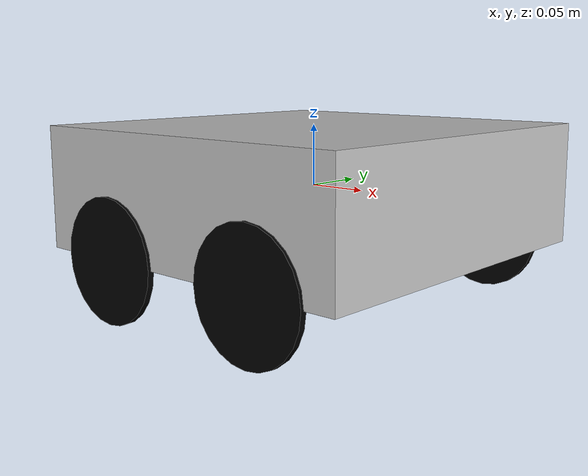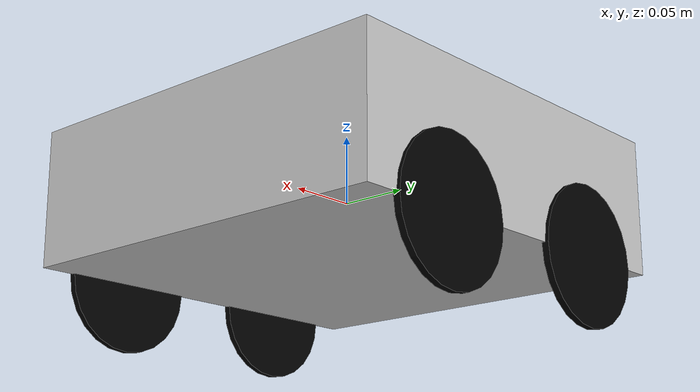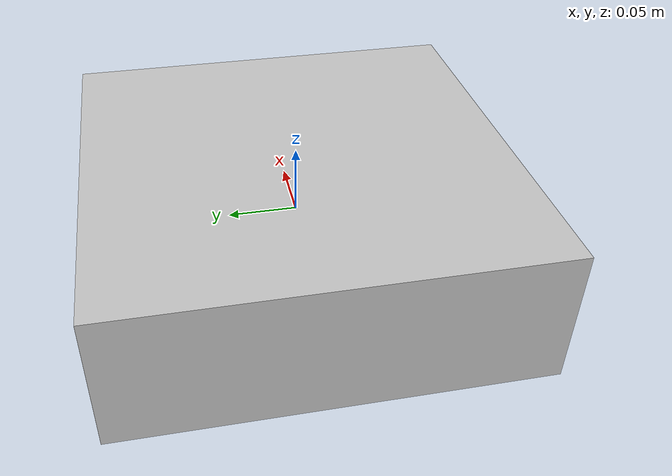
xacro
<robot name="ros_control_car" xmlns:xacro="http://ros.org/wiki/xacro">
    <xacro:include filename="$(find car)/urdf/car.urdf.xacro" />

    <transmission name="back_left">
        <type>transmission_interface/SimpleTransmission</type>
        <joint name="back_left_wheel_joint">
            <hardwareInterface>hardware_interface/VelocityJointInterface</hardwareInterface>
            </joint>
        <actuator name="back_left_motor">
            <mechanicalReduction>100</mechanicalReduction>
        </actuator>
    </transmission>
    <transmission name="back_right">
        <type>transmission_interface/SimpleTransmission</type>
        <joint name="back_right_wheel_joint">
            <hardwareInterface>hardware_interface/VelocityJointInterface</hardwareInterface>
            </joint>
        <actuator name="back_right_motor">
            <mechanicalReduction>100</mechanicalReduction>
        </actuator>
    </transmission>
    <transmission name="front_left">
        <type>transmission_interface/SimpleTransmission</type>
        <joint name="front_left_wheel_joint">
            <hardwareInterface>hardware_interface/VelocityJointInterface</hardwareInterface>
            </joint>
        <actuator name="front_left_motor">
            <mechanicalReduction>100</mechanicalReduction>
        </actuator>
    </transmission>
    <transmission name="front_right">
        <type>transmission_interface/SimpleTransmission</type>
        <joint name="front_right_wheel_joint">
            <hardwareInterface>hardware_interface/VelocityJointInterface</hardwareInterface>
            </joint>
        <actuator name="front_right_motor">
            <mechanicalReduction>100</mechanicalReduction>
        </actuator>
    </transmission>

    <gazebo>
        <plugin name="gazebo_ros_control" filename="libgazebo_ros_control.so">
        <robotNamespace>/</robotNamespace>
        </plugin>
    </gazebo>

</robot>

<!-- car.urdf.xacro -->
<robot name="car" xmlns:xacro="http://ros.org/wiki/xacro">

    <link name="base_link">

        <inertial>
            <mass value="1.0"/>
            <inertia ixx="0.0009375" iyy="0.0009375" izz="0.015" ixy="0" ixz="0" iyz="0"/>
        </inertial>

        <collision>

            <geometry>
                <box size="0.3 0.3 0.1"/>
            </geometry>

        </collision>

        <visual>
            <geometry>
                <box size="0.3 0.3 0.1"/>
            </geometry>

            <material name="silver">
                <color rgba="0.75 0.75 0.75 1"/>
            </material>
        </visual>

    </link>

    <link name="front_right_wheel">

        <inertial>
            <mass value="0.1"/>
            <inertia ixx="6.2708e-5" iyy="6.2708e-5" izz="0.000125" ixy="0" ixz="0" iyz="0"/>
        </inertial>
        <collision>
            <geometry>
                <cylinder length="0.005" radius="0.05"/>
            </geometry>
        </collision>

        <visual>
            <geometry>
                <cylinder length="0.005" radius="0.05"/>
            </geometry>
            <material name="black">
                <color rgba="0 0 0 1"/>
            </material>
        </visual>
    </link>

    <joint name="front_right_wheel_joint" type="continuous">
        <axis xyz="0 0 1"/>
        <parent link="base_link"/>
        <child link="front_right_wheel"/>
        <origin rpy="-1.5708 0 0" xyz="0.075 -0.15 -.05"/>
    </joint>

    <link name="front_left_wheel">
         <inertial>
            <mass value="0.1"/>
            <inertia ixx="6.2708e-5" iyy="6.2708e-5" izz="0.000125" ixy="0" ixz="0" iyz="0"/>
        </inertial>
        <collision>
            <geometry>
                <cylinder length="0.005" radius="0.05"/>
            </geometry>
        </collision>

        <visual>
            <geometry>
                <cylinder length="0.005" radius="0.05"/>
            </geometry>
            <material name="black"/>
        </visual>
    </link>

    <joint name="front_left_wheel_joint" type="continuous">
        <axis xyz="0 0 1"/>
        <parent link="base_link"/>
        <child link="front_left_wheel"/>
        <origin rpy="-1.5708 0 0" xyz="0.075 0.15 -.05"/>
    </joint>

    <link name="back_right_wheel">
         <inertial>
            <mass value="0.1"/>
            <inertia ixx="6.2708e-5" iyy="6.2708e-5" izz="0.000125" ixy="0" ixz="0" iyz="0"/>
        </inertial>
        <collision>
            <geometry>
                <cylinder length="0.005" radius="0.05"/>
            </geometry>
        </collision>

        <visual>
            <geometry>
                <cylinder length="0.005" radius="0.05"/>
            </geometry>
            <material name="black">
                <color rgba="0 0 0 1"/>
            </material>
        </visual>
    </link>

    <joint name="back_right_wheel_joint" type="continuous">
        <axis xyz="0 0 1"/>
        <parent link="base_link"/>
        <child link="back_right_wheel"/>
        <origin rpy="-1.5708 0 0" xyz="-0.075 -0.15 -.05"/>
    </joint>

    <link name="back_left_wheel">
        <inertial>
            <mass value="0.1"/>
            <inertia ixx="6.2708e-5" iyy="6.2708e-5" izz="0.000125" ixy="0" ixz="0" iyz="0"/>
        </inertial>
        <collision>
            <geometry>
                <cylinder length="0.005" radius="0.05"/>
            </geometry>
        </collision>

        <visual>
            <geometry>
                <cylinder length="0.005" radius="0.05"/>
            </geometry>
            <material name="black"/>
        </visual>
    </link>

    <joint name="back_left_wheel_joint" type="continuous">
        <axis xyz="0 0 1"/>
        <parent link="base_link"/>
        <child link="back_left_wheel"/>
        <origin rpy="-1.5708 0 0" xyz="-0.075 0.15 -.05"/>
    </joint>

    <!-- gazebo -->
    <gazebo reference="base_link">
        <material>Gazebo/Grey</material>
        <mu1>0.1</mu1>
        <mu2>0.1</mu2>
    </gazebo>
    <gazebo reference="back_left_wheel">
        <material>Gazebo/Black</material>
        <mu1>0.1</mu1>
        <mu2>0.1</mu2>
    </gazebo>
    <gazebo reference="back_right_wheel">
        <material>Gazebo/Black</material>
        <mu1>0.1</mu1>
        <mu2>0.1</mu2>
    </gazebo>
    <gazebo reference="front_left_wheel">
        <material>Gazebo/Black</material>
        <mu1>0.1</mu1>
        <mu2>0.1</mu2>
    </gazebo>
    <gazebo reference="front_right_wheel">
        <material>Gazebo/Black</material>
        <mu1>0.1</mu1>
        <mu2>0.1</mu2>
    </gazebo>

</robot>
